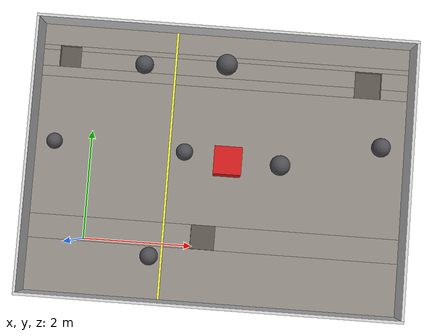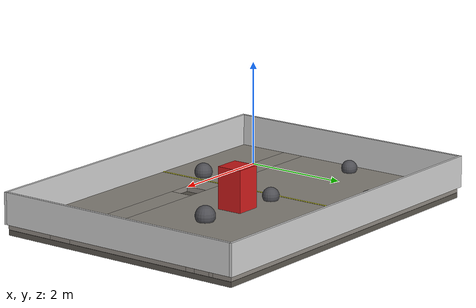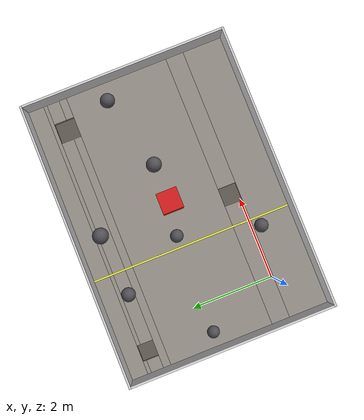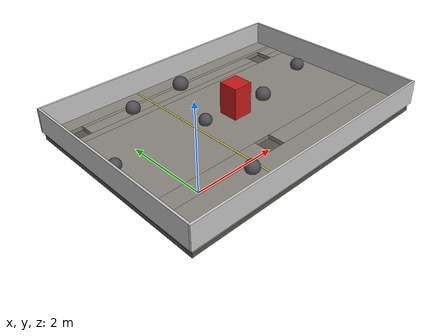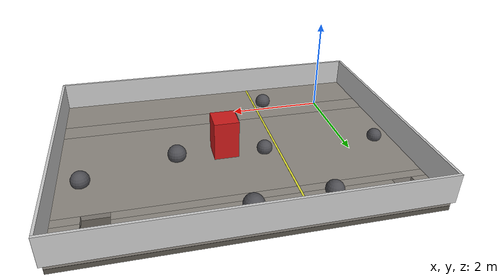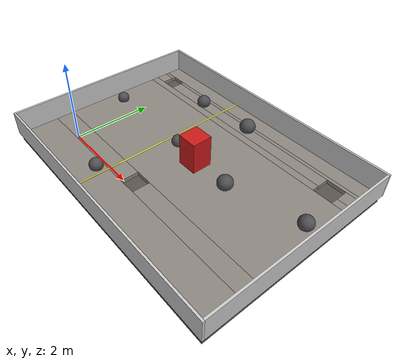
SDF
<sdf version="1.7">
 <world name="lunabotics_arena">
  <gravity>0 0 -9.81</gravity>
  <physics name="default_physics" type="ode">
   <max_step_size>0.001</max_step_size>
   <real_time_factor>1</real_time_factor>
   <real_time_update_rate>1000</real_time_update_rate>
  </physics>
  <scene><ambient>0.4 0.4 0.4 1</ambient><background>0.05 0.05 0.08 1</background><shadows>1</shadows></scene>
  <light name="sun" type="directional">
   <pose>2.4 1.48 10 0 -0 0</pose>
   <diffuse>0.9 0.9 0.9 1</diffuse>
   <specular>0.2 0.2 0.2 1</specular>
   <direction>-0.4 0.3 -1</direction>
   <attenuation><range>10</range></attenuation>
   <spot><inner_angle>0</inner_angle><outer_angle>0</outer_angle><falloff>0</falloff></spot>
  </light>
  <model name="arena_floor">
   <static>1</static>
   <link name="link">
    <collision name="c0">
     <pose>2.4 -0.5325 -0.05 0 -0 0</pose>
     <geometry><box><size>6.88 0.975 0.1</size></box></geometry>
     <surface><friction><ode><mu>1</mu><mu2>1</mu2></ode></friction></surface>
    </collision>
    <visual name="v0">
     <pose>2.4 -0.5325 -0.05 0 -0 0</pose>
     <geometry><box><size>6.88 0.975 0.1</size></box></geometry>
     <material>
      <ambient>0.55 0.53 0.5 1</ambient>
      <diffuse>0.55 0.53 0.5 1</diffuse>
      <specular>0.05 0.05 0.05 1</specular>
     </material>
    </visual>
    <collision name="c1">
     <pose>0.4675 0.18 -0.05 0 -0 0</pose>
     <geometry><box><size>3.015 0.45 0.1</size></box></geometry>
     <surface><friction><ode><mu>1</mu><mu2>1</mu2></ode></friction></surface>
    </collision>
    <visual name="v1">
     <pose>0.4675 0.18 -0.05 0 -0 0</pose>
     <geometry><box><size>3.015 0.45 0.1</size></box></geometry>
     <material>
      <ambient>0.55 0.53 0.5 1</ambient>
      <diffuse>0.55 0.53 0.5 1</diffuse>
      <specular>0.05 0.05 0.05 1</specular>
     </material>
    </visual>
    <collision name="c2">
     <pose>4.1325 0.18 -0.05 0 -0 0</pose>
     <geometry><box><size>3.415 0.45 0.1</size></box></geometry>
     <surface><friction><ode><mu>1</mu><mu2>1</mu2></ode></friction></surface>
    </collision>
    <visual name="v2">
     <pose>4.1325 0.18 -0.05 0 -0 0</pose>
     <geometry><box><size>3.415 0.45 0.1</size></box></geometry>
     <material>
      <ambient>0.55 0.53 0.5 1</ambient>
      <diffuse>0.55 0.53 0.5 1</diffuse>
      <specular>0.05 0.05 0.05 1</specular>
     </material>
    </visual>
    <collision name="c3">
     <pose>2.4 1.7025 -0.05 0 -0 0</pose>
     <geometry><box><size>6.88 2.595 0.1</size></box></geometry>
     <surface><friction><ode><mu>1</mu><mu2>1</mu2></ode></friction></surface>
    </collision>
    <visual name="v3">
     <pose>2.4 1.7025 -0.05 0 -0 0</pose>
     <geometry><box><size>6.88 2.595 0.1</size></box></geometry>
     <material>
      <ambient>0.55 0.53 0.5 1</ambient>
      <diffuse>0.55 0.53 0.5 1</diffuse>
      <specular>0.05 0.05 0.05 1</specular>
     </material>
    </visual>
    <collision name="c4">
     <pose>1.9 3.095 -0.05 0 -0 0</pose>
     <geometry><box><size>5.88 0.19 0.1</size></box></geometry>
     <surface><friction><ode><mu>1</mu><mu2>1</mu2></ode></friction></surface>
    </collision>
    <visual name="v4">
     <pose>1.9 3.095 -0.05 0 -0 0</pose>
     <geometry><box><size>5.88 0.19 0.1</size></box></geometry>
     <material>
      <ambient>0.55 0.53 0.5 1</ambient>
      <diffuse>0.55 0.53 0.5 1</diffuse>
      <specular>0.05 0.05 0.05 1</specular>
     </material>
    </visual>
    <collision name="c5">
     <pose>5.59 3.095 -0.05 0 -0 0</pose>
     <geometry><box><size>0.5 0.19 0.1</size></box></geometry>
     <surface><friction><ode><mu>1</mu><mu2>1</mu2></ode></friction></surface>
    </collision>
    <visual name="v5">
     <pose>5.59 3.095 -0.05 0 -0 0</pose>
     <geometry><box><size>0.5 0.19 0.1</size></box></geometry>
     <material>
      <ambient>0.55 0.53 0.5 1</ambient>
      <diffuse>0.55 0.53 0.5 1</diffuse>
      <specular>0.05 0.05 0.05 1</specular>
     </material>
    </visual>
    <collision name="c6">
     <pose>-0.885 3.345 -0.05 0 -0 0</pose>
     <geometry><box><size>0.31 0.31 0.1</size></box></geometry>
     <surface><friction><ode><mu>1</mu><mu2>1</mu2></ode></friction></surface>
    </collision>
    <visual name="v6">
     <pose>-0.885 3.345 -0.05 0 -0 0</pose>
     <geometry><box><size>0.31 0.31 0.1</size></box></geometry>
     <material>
      <ambient>0.55 0.53 0.5 1</ambient>
      <diffuse>0.55 0.53 0.5 1</diffuse>
      <specular>0.05 0.05 0.05 1</specular>
     </material>
    </visual>
    <collision name="c7">
     <pose>2.255 3.345 -0.05 0 -0 0</pose>
     <geometry><box><size>5.17 0.31 0.1</size></box></geometry>
     <surface><friction><ode><mu>1</mu><mu2>1</mu2></ode></friction></surface>
    </collision>
    <visual name="v7">
     <pose>2.255 3.345 -0.05 0 -0 0</pose>
     <geometry><box><size>5.17 0.31 0.1</size></box></geometry>
     <material>
      <ambient>0.55 0.53 0.5 1</ambient>
      <diffuse>0.55 0.53 0.5 1</diffuse>
      <specular>0.05 0.05 0.05 1</specular>
     </material>
    </visual>
    <collision name="c8">
     <pose>5.59 3.345 -0.05 0 -0 0</pose>
     <geometry><box><size>0.5 0.31 0.1</size></box></geometry>
     <surface><friction><ode><mu>1</mu><mu2>1</mu2></ode></friction></surface>
    </collision>
    <visual name="v8">
     <pose>5.59 3.345 -0.05 0 -0 0</pose>
     <geometry><box><size>0.5 0.31 0.1</size></box></geometry>
     <material>
      <ambient>0.55 0.53 0.5 1</ambient>
      <diffuse>0.55 0.53 0.5 1</diffuse>
      <specular>0.05 0.05 0.05 1</specular>
     </material>
    </visual>
    <collision name="c9">
     <pose>-0.885 3.545 -0.05 0 -0 0</pose>
     <geometry><box><size>0.31 0.09 0.1</size></box></geometry>
     <surface><friction><ode><mu>1</mu><mu2>1</mu2></ode></friction></surface>
    </collision>
    <visual name="v9">
     <pose>-0.885 3.545 -0.05 0 -0 0</pose>
     <geometry><box><size>0.31 0.09 0.1</size></box></geometry>
     <material>
      <ambient>0.55 0.53 0.5 1</ambient>
      <diffuse>0.55 0.53 0.5 1</diffuse>
      <specular>0.05 0.05 0.05 1</specular>
     </material>
    </visual>
    <collision name="c10">
     <pose>2.755 3.545 -0.05 0 -0 0</pose>
     <geometry><box><size>6.17 0.09 0.1</size></box></geometry>
     <surface><friction><ode><mu>1</mu><mu2>1</mu2></ode></friction></surface>
    </collision>
    <visual name="v10">
     <pose>2.755 3.545 -0.05 0 -0 0</pose>
     <geometry><box><size>6.17 0.09 0.1</size></box></geometry>
     <material>
      <ambient>0.55 0.53 0.5 1</ambient>
      <diffuse>0.55 0.53 0.5 1</diffuse>
      <specular>0.05 0.05 0.05 1</specular>
     </material>
    </visual>
    <collision name="c11">
     <pose>2.4 3.785 -0.05 0 -0 0</pose>
     <geometry><box><size>6.88 0.39 0.1</size></box></geometry>
     <surface><friction><ode><mu>1</mu><mu2>1</mu2></ode></friction></surface>
    </collision>
    <visual name="v11">
     <pose>2.4 3.785 -0.05 0 -0 0</pose>
     <geometry><box><size>6.88 0.39 0.1</size></box></geometry>
     <material>
      <ambient>0.55 0.53 0.5 1</ambient>
      <diffuse>0.55 0.53 0.5 1</diffuse>
      <specular>0.05 0.05 0.05 1</specular>
     </material>
    </visual>
   </link>
  </model>
  <model name="pit_floor">
   <static>1</static>
   <pose>2.4 1.48 -0.153139 0 -0 0</pose>
   <link name="link">
    <collision name="collision">
     <geometry><box><size>6.88 5 0.1</size></box></geometry>
     <surface><friction><ode><mu>1</mu><mu2>1</mu2></ode></friction></surface>
    </collision>
    <visual name="visual">
     <geometry><box><size>6.88 5 0.1</size></box></geometry>
     <material>
      <ambient>0.35 0.33 0.3 1</ambient>
      <diffuse>0.35 0.33 0.3 1</diffuse>
      <specular>0.05 0.05 0.05 1</specular>
     </material>
    </visual>
   </link>
  </model>
  <model name="wall_south">
   <static>1</static>
   <pose>2.4 -1.045 0.3 0 -0 0</pose>
   <link name="link">
    <collision name="collision"><geometry><box><size>6.98 0.05 0.6</size></box></geometry></collision>
    <visual name="visual">
     <geometry><box><size>6.98 0.05 0.6</size></box></geometry>
     <material><ambient>0.8 0.8 0.8 1</ambient><diffuse>0.8 0.8 0.8 1</diffuse></material>
    </visual>
   </link>
  </model>
  <model name="wall_north">
   <static>1</static>
   <pose>2.4 4.005 0.3 0 -0 0</pose>
   <link name="link">
    <collision name="collision"><geometry><box><size>6.98 0.05 0.6</size></box></geometry></collision>
    <visual name="visual">
     <geometry><box><size>6.98 0.05 0.6</size></box></geometry>
     <material><ambient>0.8 0.8 0.8 1</ambient><diffuse>0.8 0.8 0.8 1</diffuse></material>
    </visual>
   </link>
  </model>
  <model name="wall_west">
   <static>1</static>
   <pose>-1.065 1.48 0.3 0 -0 0</pose>
   <link name="link">
    <collision name="collision"><geometry><box><size>0.05 5 0.6</size></box></geometry></collision>
    <visual name="visual">
     <geometry><box><size>0.05 5 0.6</size></box></geometry>
     <material><ambient>0.8 0.8 0.8 1</ambient><diffuse>0.8 0.8 0.8 1</diffuse></material>
    </visual>
   </link>
  </model>
  <model name="wall_east">
   <static>1</static>
   <pose>5.865 1.48 0.3 0 -0 0</pose>
   <link name="link">
    <collision name="collision"><geometry><box><size>0.05 5 0.6</size></box></geometry></collision>
    <visual name="visual">
     <geometry><box><size>0.05 5 0.6</size></box></geometry>
     <material><ambient>0.8 0.8 0.8 1</ambient><diffuse>0.8 0.8 0.8 1</diffuse></material>
    </visual>
   </link>
  </model>
  <model name="zone_divider">
   <static>1</static>
   <pose>1.46 1.48 0.002 0 -0 0</pose>
   <link name="link">
    <visual name="visual">
     <geometry><box><size>0.04 5 0.004</size></box></geometry>
     <material><ambient>0.9 0.9 0.2 1</ambient><diffuse>0.9 0.9 0.2 1</diffuse></material>
    </visual>
   </link>
  </model>
  <model name="column">
   <static>1</static>
   <pose>2.56 1.59 0.4 0 -0 0</pose>
   <link name="link">
    <collision name="collision"><geometry><box><size>0.5 0.5 0.8</size></box></geometry></collision>
    <visual name="visual">
     <geometry><box><size>0.5 0.5 0.8</size></box></geometry>
     <material><ambient>0.8 0.1 0.1 1</ambient><diffuse>0.8 0.1 0.1 1</diffuse></material>
    </visual>
   </link>
  </model>
  <model name="rock_1">
   <static>1</static>
   <pose>0.88 3.32 0.0875 0 -0 0</pose>
   <link name="link">
    <collision name="collision"><geometry><sphere><radius>0.175</radius></sphere></geometry></collision>
    <visual name="visual">
     <geometry><sphere><radius>0.175</radius></sphere></geometry>
     <material><ambient>0.3 0.3 0.32 1</ambient><diffuse>0.3 0.3 0.32 1</diffuse></material>
    </visual>
   </link>
  </model>
  <model name="rock_2">
   <static>1</static>
   <pose>2.42 3.43 0.1 0 -0 0</pose>
   <link name="link">
    <collision name="collision"><geometry><sphere><radius>0.2</radius></sphere></geometry></collision>
    <visual name="visual">
     <geometry><sphere><radius>0.2</radius></sphere></geometry>
     <material><ambient>0.3 0.3 0.32 1</ambient><diffuse>0.3 0.3 0.32 1</diffuse></material>
    </visual>
   </link>
  </model>
  <model name="rock_3">
   <static>1</static>
   <pose>-0.68 1.77 0.075 0 -0 0</pose>
   <link name="link">
    <collision name="collision"><geometry><sphere><radius>0.15</radius></sphere></geometry></collision>
    <visual name="visual">
     <geometry><sphere><radius>0.15</radius></sphere></geometry>
     <material><ambient>0.3 0.3 0.32 1</ambient><diffuse>0.3 0.3 0.32 1</diffuse></material>
    </visual>
   </link>
  </model>
  <model name="rock_4">
   <static>1</static>
   <pose>1.75 1.74 0.08 0 -0 0</pose>
   <link name="link">
    <collision name="collision"><geometry><sphere><radius>0.16</radius></sphere></geometry></collision>
    <visual name="visual">
     <geometry><sphere><radius>0.16</radius></sphere></geometry>
     <material><ambient>0.3 0.3 0.32 1</ambient><diffuse>0.3 0.3 0.32 1</diffuse></material>
    </visual>
   </link>
  </model>
  <model name="rock_5">
   <static>1</static>
   <pose>3.54 1.62 0.095 0 -0 0</pose>
   <link name="link">
    <collision name="collision"><geometry><sphere><radius>0.19</radius></sphere></geometry></collision>
    <visual name="visual">
     <geometry><sphere><radius>0.19</radius></sphere></geometry>
     <material><ambient>0.3 0.3 0.32 1</ambient><diffuse>0.3 0.3 0.32 1</diffuse></material>
    </visual>
   </link>
  </model>
  <model name="rock_6">
   <static>1</static>
   <pose>5.39 2.09 0.09 0 -0 0</pose>
   <link name="link">
    <collision name="collision"><geometry><sphere><radius>0.18</radius></sphere></geometry></collision>
    <visual name="visual">
     <geometry><sphere><radius>0.18</radius></sphere></geometry>
     <material><ambient>0.3 0.3 0.32 1</ambient><diffuse>0.3 0.3 0.32 1</diffuse></material>
    </visual>
   </link>
  </model>
  <model name="rock_7">
   <static>1</static>
   <pose>1.24 -0.23 0.085 0 -0 0</pose>
   <link name="link">
    <collision name="collision"><geometry><sphere><radius>0.17</radius></sphere></geometry></collision>
    <visual name="visual">
     <geometry><sphere><radius>0.17</radius></sphere></geometry>
     <material><ambient>0.3 0.3 0.32 1</ambient><diffuse>0.3 0.3 0.32 1</diffuse></material>
    </visual>
   </link>
  </model>
  <magnetic_field>6e-06 2.3e-05 -4.2e-05</magnetic_field>
  <atmosphere type="adiabatic"/>
  <audio><device>default</device></audio>
  <spherical_coordinates>
   <surface_model>EARTH_WGS84</surface_model>
   <latitude_deg>0</latitude_deg>
   <longitude_deg>0</longitude_deg>
   <elevation>0</elevation>
   <heading_deg>0</heading_deg>
  </spherical_coordinates>
 </world>
</sdf>
